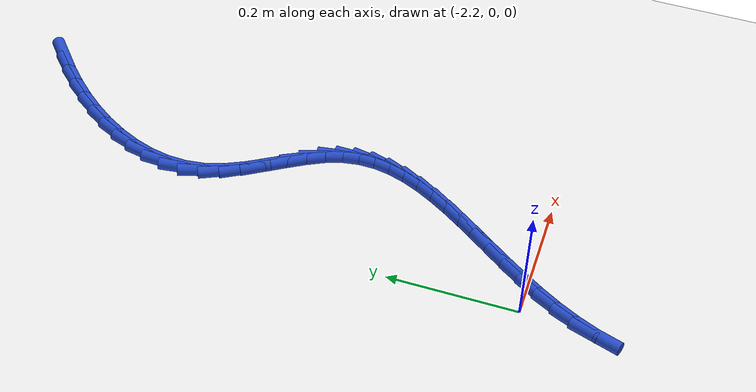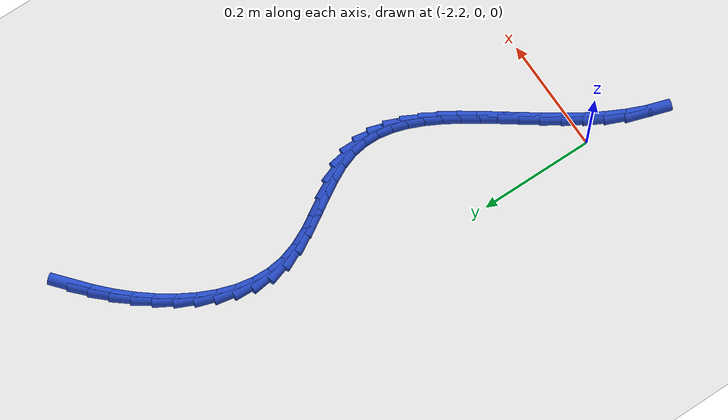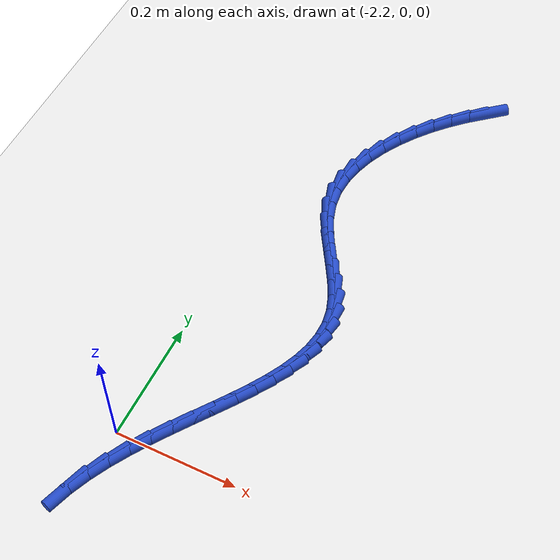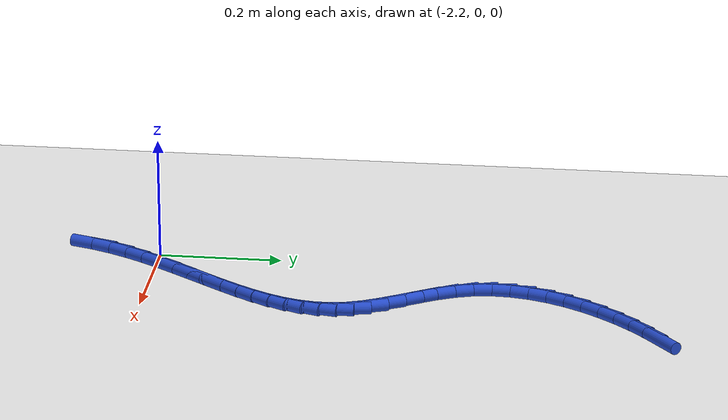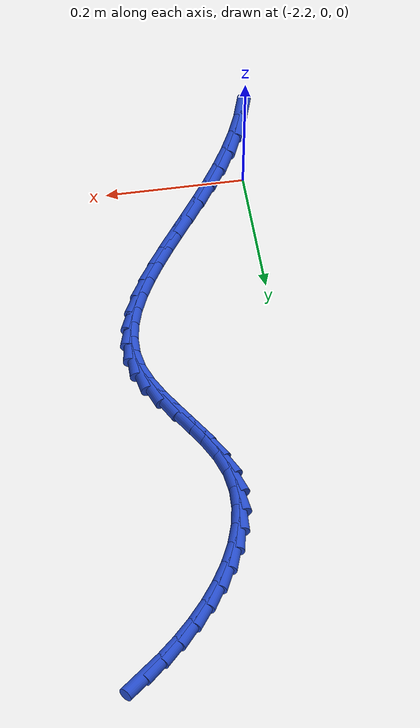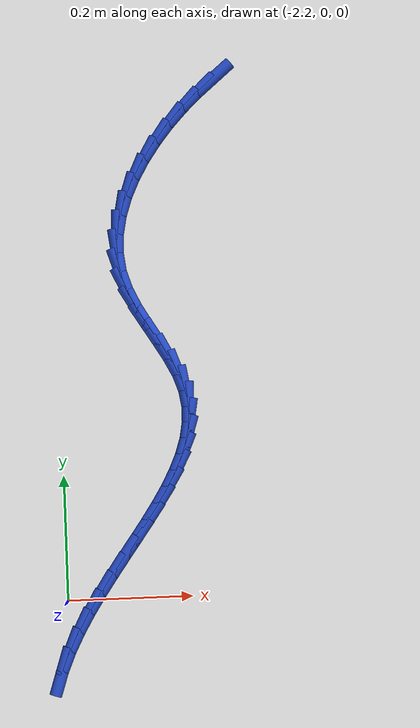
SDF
<sdf version="1.6">
 <world name="default">
  <model name="ground_plane">
   <static>1</static>
   <link name="link">
    <collision name="collision">
     <geometry><plane><normal>0 0 1</normal><size>100 100</size></plane></geometry>
     <surface><friction><ode><mu>100</mu><mu2>50</mu2></ode></friction></surface>
    </collision>
    <visual name="visual">
     <cast_shadows>0</cast_shadows>
     <geometry><plane><normal>0 0 1</normal><size>100 100</size></plane></geometry>
     <material>
      <script><uri>file://media/materials/scripts/gazebo.material</uri><name>Gazebo/WhiteGlow</name></script>
     </material>
    </visual>
   </link>
  </model>
  <model name="line">
   <link name="link_100">
    <pose>-1.9384231497007423 0.8274419107435173 0.01 0 1.57 0.700813807046857</pose>
    <collision name="collision">
     <geometry><cylinder><radius>0.01</radius><length>0.08</length></cylinder></geometry>
    </collision>
    <visual name="visual">
     <material>
      <script><name>Gazebo/Blue</name><uri>file://media/materials/scripts/gazebo.material</uri></script>
     </material>
     <geometry><cylinder><radius>0.01</radius><length>0.08</length></cylinder></geometry>
    </visual>
   </link>
   <link name="link_101">
    <pose>-1.9637911680044844 0.8060394084471219 0.01 0 1.57 0.761840120946377</pose>
    <collision name="collision">
     <geometry><cylinder><radius>0.01</radius><length>0.08</length></cylinder></geometry>
    </collision>
    <visual name="visual">
     <material>
      <script><name>Gazebo/Blue</name><uri>file://media/materials/scripts/gazebo.material</uri></script>
     </material>
     <geometry><cylinder><radius>0.01</radius><length>0.08</length></cylinder></geometry>
    </visual>
   </link>
   <link name="link_102">
    <pose>-1.9884007499992187 0.7825628513683167 0.01 0 1.57 0.8246047856338675</pose>
    <collision name="collision">
     <geometry><cylinder><radius>0.01</radius><length>0.08</length></cylinder></geometry>
    </collision>
    <visual name="visual">
     <material>
      <script><name>Gazebo/Blue</name><uri>file://media/materials/scripts/gazebo.material</uri></script>
     </material>
     <geometry><cylinder><radius>0.01</radius><length>0.08</length></cylinder></geometry>
    </visual>
   </link>
   <link name="link_103">
    <pose>-2.0117716230678644 0.7572835930455689 0.01 0 1.57 0.8914012435576827</pose>
    <collision name="collision">
     <geometry><cylinder><radius>0.01</radius><length>0.08</length></cylinder></geometry>
    </collision>
    <visual name="visual">
     <material>
      <script><name>Gazebo/Blue</name><uri>file://media/materials/scripts/gazebo.material</uri></script>
     </material>
     <geometry><cylinder><radius>0.01</radius><length>0.08</length></cylinder></geometry>
    </visual>
   </link>
   <link name="link_104">
    <pose>-2.033423278875968 0.7304757543255315 0.01 0 1.57 0.9646692932176404</pose>
    <collision name="collision">
     <geometry><cylinder><radius>0.01</radius><length>0.08</length></cylinder></geometry>
    </collision>
    <visual name="visual">
     <material>
      <script><name>Gazebo/Blue</name><uri>file://media/materials/scripts/gazebo.material</uri></script>
     </material>
     <geometry><cylinder><radius>0.01</radius><length>0.08</length></cylinder></geometry>
    </visual>
   </link>
   <link name="link_105">
    <pose>-2.0528752090890747 0.7024134560548593 0.01 0 1.57 1.0470962747777723</pose>
    <collision name="collision">
     <geometry><cylinder><radius>0.01</radius><length>0.08</length></cylinder></geometry>
    </collision>
    <visual name="visual">
     <material>
      <script><name>Gazebo/Blue</name><uri>file://media/materials/scripts/gazebo.material</uri></script>
     </material>
     <geometry><cylinder><radius>0.01</radius><length>0.08</length></cylinder></geometry>
    </visual>
   </link>
   <link name="link_106">
    <pose>-2.06964690537273 0.6733708190802051 0.01 0 1.57 1.141699222229249</pose>
    <collision name="collision">
     <geometry><cylinder><radius>0.01</radius><length>0.08</length></cylinder></geometry>
    </collision>
    <visual name="visual">
     <material>
      <script><name>Gazebo/Blue</name><uri>file://media/materials/scripts/gazebo.material</uri></script>
     </material>
     <geometry><cylinder><radius>0.01</radius><length>0.08</length></cylinder></geometry>
    </visual>
   </link>
   <link name="link_107">
    <pose>-2.0832578593924826 0.643621964248223 0.01 0 1.57 1.2517503191585382</pose>
    <collision name="collision">
     <geometry><cylinder><radius>0.01</radius><length>0.08</length></cylinder></geometry>
    </collision>
    <visual name="visual">
     <material>
      <script><name>Gazebo/Blue</name><uri>file://media/materials/scripts/gazebo.material</uri></script>
     </material>
     <geometry><cylinder><radius>0.01</radius><length>0.08</length></cylinder></geometry>
    </visual>
   </link>
   <link name="link_108">
    <pose>-2.093227562813876 0.6134410124055663 0.01 0 1.57 1.3803778501934894</pose>
    <collision name="collision">
     <geometry><cylinder><radius>0.01</radius><length>0.08</length></cylinder></geometry>
    </collision>
    <visual name="visual">
     <material>
      <script><name>Gazebo/Blue</name><uri>file://media/materials/scripts/gazebo.material</uri></script>
     </material>
     <geometry><cylinder><radius>0.01</radius><length>0.08</length></cylinder></geometry>
    </visual>
   </link>
   <link name="link_109">
    <pose>-2.0990755073024565 0.583102084398888 0.01 0 1.57 1.5296031467760258</pose>
    <collision name="collision">
     <geometry><cylinder><radius>0.01</radius><length>0.08</length></cylinder></geometry>
    </collision>
    <visual name="visual">
     <material>
      <script><name>Gazebo/Blue</name><uri>file://media/materials/scripts/gazebo.material</uri></script>
     </material>
     <geometry><cylinder><radius>0.01</radius><length>0.08</length></cylinder></geometry>
    </visual>
   </link>
   <link name="link_110">
    <pose>-2.100321184523772 0.5528793010748433 0.01 0 1.57 -1.4428773098845649</pose>
    <collision name="collision">
     <geometry><cylinder><radius>0.01</radius><length>0.08</length></cylinder></geometry>
    </collision>
    <visual name="visual">
     <material>
      <script><name>Gazebo/Blue</name><uri>file://media/materials/scripts/gazebo.material</uri></script>
     </material>
     <geometry><cylinder><radius>0.01</radius><length>0.08</length></cylinder></geometry>
    </visual>
   </link>
   <link name="link_111">
    <pose>-2.096484086143366 0.5230467832800847 0.01 0 1.57 -1.264440634842718</pose>
    <collision name="collision">
     <geometry><cylinder><radius>0.01</radius><length>0.08</length></cylinder></geometry>
    </collision>
    <visual name="visual">
     <material>
      <script><name>Gazebo/Blue</name><uri>file://media/materials/scripts/gazebo.material</uri></script>
     </material>
     <geometry><cylinder><radius>0.01</radius><length>0.08</length></cylinder></geometry>
    </visual>
   </link>
   <link name="link_112">
    <pose>-2.0872494563218837 0.49385227382657026 0.01 0 1.57 -1.126559806485799</pose>
    <collision name="collision">
     <geometry><cylinder><radius>0.01</radius><length>0.08</length></cylinder></geometry>
    </collision>
    <visual name="visual">
     <material>
      <script><name>Gazebo/Blue</name><uri>file://media/materials/scripts/gazebo.material</uri></script>
     </material>
     <geometry><cylinder><radius>0.01</radius><length>0.08</length></cylinder></geometry>
    </visual>
   </link>
   <link name="link_113">
    <pose>-2.0736717287399213 0.46532562119747467 0.01 0 1.57 -1.0455263630743512</pose>
    <collision name="collision">
     <geometry><cylinder><radius>0.01</radius><length>0.08</length></cylinder></geometry>
    </collision>
    <visual name="visual">
     <material>
      <script><name>Gazebo/Blue</name><uri>file://media/materials/scripts/gazebo.material</uri></script>
     </material>
     <geometry><cylinder><radius>0.01</radius><length>0.08</length></cylinder></geometry>
    </visual>
   </link>
   <link name="link_114">
    <pose>-2.057480348903148 0.4373892517504035 0.01 0 1.57 -1.0140192530107222</pose>
    <collision name="collision">
     <geometry><cylinder><radius>0.01</radius><length>0.08</length></cylinder></geometry>
    </collision>
    <visual name="visual">
     <material>
      <script><name>Gazebo/Blue</name><uri>file://media/materials/scripts/gazebo.material</uri></script>
     </material>
     <geometry><cylinder><radius>0.01</radius><length>0.08</length></cylinder></geometry>
    </visual>
   </link>
   <link name="link_115">
    <pose>-2.0404095056583396 0.40996483698243047 0.01 0 1.57 -1.0297873826853878</pose>
    <collision name="collision">
     <geometry><cylinder><radius>0.01</radius><length>0.08</length></cylinder></geometry>
    </collision>
    <visual name="visual">
     <material>
      <script><name>Gazebo/Blue</name><uri>file://media/materials/scripts/gazebo.material</uri></script>
     </material>
     <geometry><cylinder><radius>0.01</radius><length>0.08</length></cylinder></geometry>
    </visual>
   </link>
   <link name="link_116">
    <pose>-2.02419338785227 0.38297404839063015 0.01 0 1.57 -1.097897368718048</pose>
    <collision name="collision">
     <geometry><cylinder><radius>0.01</radius><length>0.08</length></cylinder></geometry>
    </collision>
    <visual name="visual">
     <material>
      <script><name>Gazebo/Blue</name><uri>file://media/materials/scripts/gazebo.material</uri></script>
     </material>
     <geometry><cylinder><radius>0.01</radius><length>0.08</length></cylinder></geometry>
    </visual>
   </link>
   <link name="link_117">
    <pose>-2.0105661843317177 0.3563385574720764 0.01 0 1.57 -1.2306534930975481</pose>
    <collision name="collision">
     <geometry><cylinder><radius>0.01</radius><length>0.08</length></cylinder></geometry>
    </collision>
    <visual name="visual">
     <material>
      <script><name>Gazebo/Blue</name><uri>file://media/materials/scripts/gazebo.material</uri></script>
     </material>
     <geometry><cylinder><radius>0.01</radius><length>0.08</length></cylinder></geometry>
    </visual>
   </link>
   <link name="link_118">
    <pose>-2.001237998163617 0.3299801239506957 0.01 0 1.57 -1.4098217810470959</pose>
    <collision name="collision">
     <geometry><cylinder><radius>0.01</radius><length>0.08</length></cylinder></geometry>
    </collision>
    <visual name="visual">
     <material>
      <script><name>Gazebo/Blue</name><uri>file://media/materials/scripts/gazebo.material</uri></script>
     </material>
     <geometry><cylinder><radius>0.01</radius><length>0.08</length></cylinder></geometry>
    </visual>
   </link>
   <link name="link_119">
    <pose>-1.9969907636435382 0.3038239074572791 0.01 0 1.57 1.5548653314879712</pose>
    <collision name="collision">
     <geometry><cylinder><radius>0.01</radius><length>0.08</length></cylinder></geometry>
    </collision>
    <visual name="visual">
     <material>
      <script><name>Gazebo/Blue</name><uri>file://media/materials/scripts/gazebo.material</uri></script>
     </material>
     <geometry><cylinder><radius>0.01</radius><length>0.08</length></cylinder></geometry>
    </visual>
   </link>
   <link name="link_120">
    <pose>-1.9974053939602607 0.27779946699483665 0.01 0 1.57 1.3962757675652302</pose>
    <collision name="collision">
     <geometry><cylinder><radius>0.01</radius><length>0.08</length></cylinder></geometry>
    </collision>
    <visual name="visual">
     <material>
      <script><name>Gazebo/Blue</name><uri>file://media/materials/scripts/gazebo.material</uri></script>
     </material>
     <geometry><cylinder><radius>0.01</radius><length>0.08</length></cylinder></geometry>
    </visual>
   </link>
   <link name="link_121">
    <pose>-2.001983007374859 0.25183665385731874 0.01 0 1.57 1.2635091571198134</pose>
    <collision name="collision">
     <geometry><cylinder><radius>0.01</radius><length>0.08</length></cylinder></geometry>
    </collision>
    <visual name="visual">
     <material>
      <script><name>Gazebo/Blue</name><uri>file://media/materials/scripts/gazebo.material</uri></script>
     </material>
     <geometry><cylinder><radius>0.01</radius><length>0.08</length></cylinder></geometry>
    </visual>
   </link>
   <link name="link_122">
    <pose>-2.0102247221484046 0.22586531933867465 0.01 0 1.57 1.1580618773456446</pose>
    <collision name="collision">
     <geometry><cylinder><radius>0.01</radius><length>0.08</length></cylinder></geometry>
    </collision>
    <visual name="visual">
     <material>
      <script><name>Gazebo/Blue</name><uri>file://media/materials/scripts/gazebo.material</uri></script>
     </material>
     <geometry><cylinder><radius>0.01</radius><length>0.08</length></cylinder></geometry>
    </visual>
   </link>
   <link name="link_123">
    <pose>-2.021631656541971 0.1998153147328554 0.01 0 1.57 1.0778552458889727</pose>
    <collision name="collision">
     <geometry><cylinder><radius>0.01</radius><length>0.08</length></cylinder></geometry>
    </collision>
    <visual name="visual">
     <material>
      <script><name>Gazebo/Blue</name><uri>file://media/materials/scripts/gazebo.material</uri></script>
     </material>
     <geometry><cylinder><radius>0.01</radius><length>0.08</length></cylinder></geometry>
    </visual>
   </link>
   <link name="link_124">
    <pose>-2.035704928816633 0.17361649133381063 0.01 0 1.57 1.0195910211580408</pose>
    <collision name="collision">
     <geometry><cylinder><radius>0.01</radius><length>0.08</length></cylinder></geometry>
    </collision>
    <visual name="visual">
     <material>
      <script><name>Gazebo/Blue</name><uri>file://media/materials/scripts/gazebo.material</uri></script>
     </material>
     <geometry><cylinder><radius>0.01</radius><length>0.08</length></cylinder></geometry>
    </visual>
   </link>
   <link name="link_125">
    <pose>-2.051945657233462 0.1471987004354902 0.01 0 1.57 0.9800846038073471</pose>
    <collision name="collision">
     <geometry><cylinder><radius>0.01</radius><length>0.08</length></cylinder></geometry>
    </collision>
    <visual name="visual">
     <material>
      <script><name>Gazebo/Blue</name><uri>file://media/materials/scripts/gazebo.material</uri></script>
     </material>
     <geometry><cylinder><radius>0.01</radius><length>0.08</length></cylinder></geometry>
    </visual>
   </link>
   <link name="link_126">
    <pose>-2.069854960053531 0.12049179333184384 0.01 0 1.57 0.9567880819448896</pose>
    <collision name="collision">
     <geometry><cylinder><radius>0.01</radius><length>0.08</length></cylinder></geometry>
    </collision>
    <visual name="visual">
     <material>
      <script><name>Gazebo/Blue</name><uri>file://media/materials/scripts/gazebo.material</uri></script>
     </material>
     <geometry><cylinder><radius>0.01</radius><length>0.08</length></cylinder></geometry>
    </visual>
   </link>
   <link name="link_127">
    <pose>-2.0889339555379154 0.09342562131682247 0.01 0 1.57 0.9479003197906447</pose>
    <collision name="collision">
     <geometry><cylinder><radius>0.01</radius><length>0.08</length></cylinder></geometry>
    </collision>
    <visual name="visual">
     <material>
      <script><name>Gazebo/Blue</name><uri>file://media/materials/scripts/gazebo.material</uri></script>
     </material>
     <geometry><cylinder><radius>0.01</radius><length>0.08</length></cylinder></geometry>
    </visual>
   </link>
   <link name="link_128">
    <pose>-2.108683761947686 0.06593003568437557 0.01 0 1.57 0.9523182712968126</pose>
    <collision name="collision">
     <geometry><cylinder><radius>0.01</radius><length>0.08</length></cylinder></geometry>
    </collision>
    <visual name="visual">
     <material>
      <script><name>Gazebo/Blue</name><uri>file://media/materials/scripts/gazebo.material</uri></script>
     </material>
     <geometry><cylinder><radius>0.01</radius><length>0.08</length></cylinder></geometry>
    </visual>
   </link>
   <link name="link_129">
    <pose>-2.128605497543918 0.03793488772845333 0.01 0 1.57 0.9695451689499137</pose>
    <collision name="collision">
     <geometry><cylinder><radius>0.01</radius><length>0.08</length></cylinder></geometry>
    </collision>
    <visual name="visual">
     <material>
      <script><name>Gazebo/Blue</name><uri>file://media/materials/scripts/gazebo.material</uri></script>
     </material>
     <geometry><cylinder><radius>0.01</radius><length>0.08</length></cylinder></geometry>
    </visual>
   </link>
   <link name="link_130">
    <pose>-2.1482002805876834 0.009370028743005618 0.01 0 1.57 0.9995924359981528</pose>
    <collision name="collision">
     <geometry><cylinder><radius>0.01</radius><length>0.08</length></cylinder></geometry>
    </collision>
    <visual name="visual">
     <material>
      <script><name>Gazebo/Blue</name><uri>file://media/materials/scripts/gazebo.material</uri></script>
     </material>
     <geometry><cylinder><radius>0.01</radius><length>0.08</length></cylinder></geometry>
    </visual>
   </link>
   <link name="link_131">
    <pose>-2.166969229340056 -0.0198346899780179 0.01 0 1.57 1.0428721579859201</pose>
    <collision name="collision">
     <geometry><cylinder><radius>0.01</radius><length>0.08</length></cylinder></geometry>
    </collision>
    <visual name="visual">
     <material>
      <script><name>Gazebo/Blue</name><uri>file://media/materials/scripts/gazebo.material</uri></script>
     </material>
     <geometry><cylinder><radius>0.01</radius><length>0.08</length></cylinder></geometry>
    </visual>
   </link>
   <link name="link_132">
    <pose>-2.184413462062109 -0.04974941714066626 0.01 0 1.57 1.1000538786275937</pose>
    <collision name="collision">
     <geometry><cylinder><radius>0.01</radius><length>0.08</length></cylinder></geometry>
    </collision>
    <visual name="visual">
     <material>
      <script><name>Gazebo/Blue</name><uri>file://media/materials/scripts/gazebo.material</uri></script>
     </material>
     <geometry><cylinder><radius>0.01</radius><length>0.08</length></cylinder></geometry>
    </visual>
   </link>
   <link name="link_133">
    <pose>-2.2000340970149153 -0.08044430145098994 0.01 0 1.57 1.1718439346059972</pose>
    <collision name="collision">
     <geometry><cylinder><radius>0.01</radius><length>0.08</length></cylinder></geometry>
    </collision>
    <visual name="visual">
     <material>
      <script><name>Gazebo/Blue</name><uri>file://media/materials/scripts/gazebo.material</uri></script>
     </material>
     <geometry><cylinder><radius>0.01</radius><length>0.08</length></cylinder></geometry>
    </visual>
   </link>
   <link name="link_134">
    <pose>-2.2133322524595482 -0.11198949161503889 0.01 0 1.57 1.2586424588702985</pose>
    <collision name="collision">
     <geometry><cylinder><radius>0.01</radius><length>0.08</length></cylinder></geometry>
    </collision>
    <visual name="visual">
     <material>
      <script><name>Gazebo/Blue</name><uri>file://media/materials/scripts/gazebo.material</uri></script>
     </material>
     <geometry><cylinder><radius>0.01</radius><length>0.08</length></cylinder></geometry>
    </visual>
   </link>
  </model>
 </world>
</sdf>
